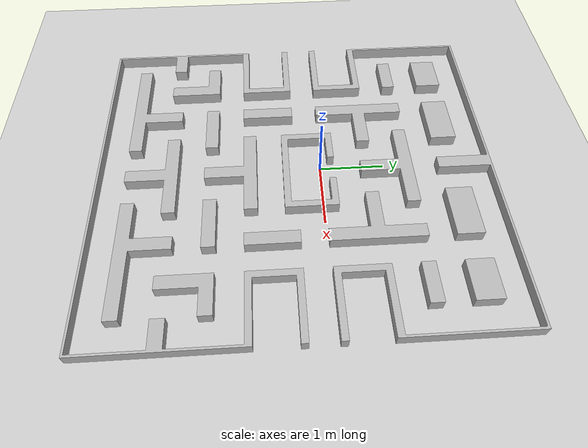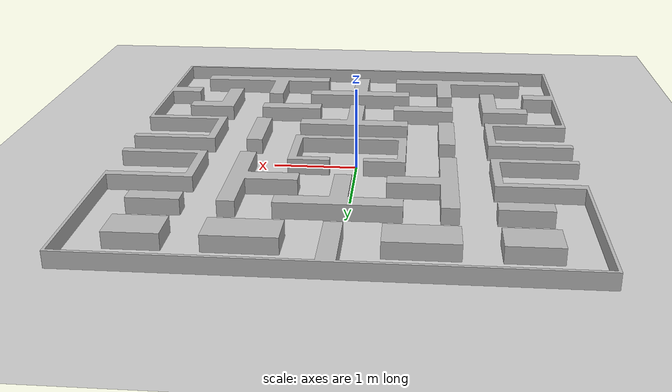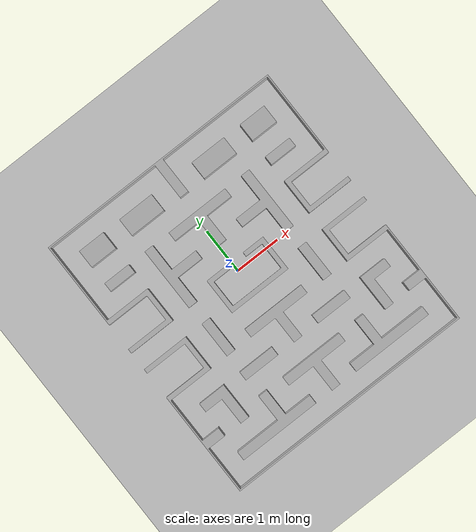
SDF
<sdf version="1.7">
 <world name="default">
  <light name="sun" type="directional">
   <pose>0 0 10 0 -0 0</pose>
   <diffuse>0.8 0.8 0.8 1</diffuse>
   <specular>0.2 0.2 0.2 1</specular>
   <attenuation>
    <range>1000</range>
    <constant>0.9</constant>
    <linear>0.01</linear>
    <quadratic>0.001</quadratic>
   </attenuation>
   <direction>-0.5 0.1 -0.9</direction>
   <spot><inner_angle>0</inner_angle><outer_angle>0</outer_angle><falloff>0</falloff></spot>
  </light>
  <model name="ground_plane">
   <static>1</static>
   <link name="link">
    <collision name="collision">
     <geometry><plane><normal>0 0 1</normal><size>100 100</size></plane></geometry>
     <surface>
      <contact><collide_bitmask>65535</collide_bitmask></contact>
      <friction><ode><mu>100</mu><mu2>50</mu2></ode></friction>
     </surface>
    </collision>
    <visual name="visual">
     <cast_shadows>0</cast_shadows>
     <geometry><plane><normal>0 0 1</normal><size>100 100</size></plane></geometry>
     <material>
      <script><uri>file://media/materials/scripts/gazebo.material</uri><name>Gazebo/Grey</name></script>
     </material>
    </visual>
   </link>
  </model>
  <gravity>0 0 -9.8</gravity>
  <magnetic_field>6e-06 2.3e-05 -4.2e-05</magnetic_field>
  <atmosphere type="adiabatic"/>
  <physics type="ode">
   <max_step_size>0.001</max_step_size>
   <real_time_factor>1</real_time_factor>
   <real_time_update_rate>1000</real_time_update_rate>
  </physics>
  <scene><ambient>0.4 0.4 0.4 1</ambient><background>0.7 0.7 0.7 1</background><shadows>1</shadows></scene>
  <audio><device>default</device></audio>
  <spherical_coordinates>
   <surface_model>EARTH_WGS84</surface_model>
   <latitude_deg>0</latitude_deg>
   <longitude_deg>0</longitude_deg>
   <elevation>0</elevation>
   <heading_deg>0</heading_deg>
  </spherical_coordinates>
  <model name="maze">
   <static>1</static>
   <link name="link">
    <collision name="collision">
     <pose>0 0 0 1.5708 -0 0</pose>
     <geometry>
      <mesh><scale>0.06 0.06 0.06</scale><uri>model://maze_swarm/meshes/mazeSwarm.obj</uri></mesh>
     </geometry>
    </collision>
    <visual name="visual">
     <pose>0 0 0 1.5708 -0 0</pose>
     <geometry>
      <mesh><scale>0.06 0.06 0.06</scale><uri>model://maze_swarm/meshes/mazeSwarm.obj</uri></mesh>
     </geometry>
    </visual>
   </link>
   <pose>-0.185876 -0.270366 -0.101788 0 -0 0</pose>
  </model>
 </world>
</sdf>
